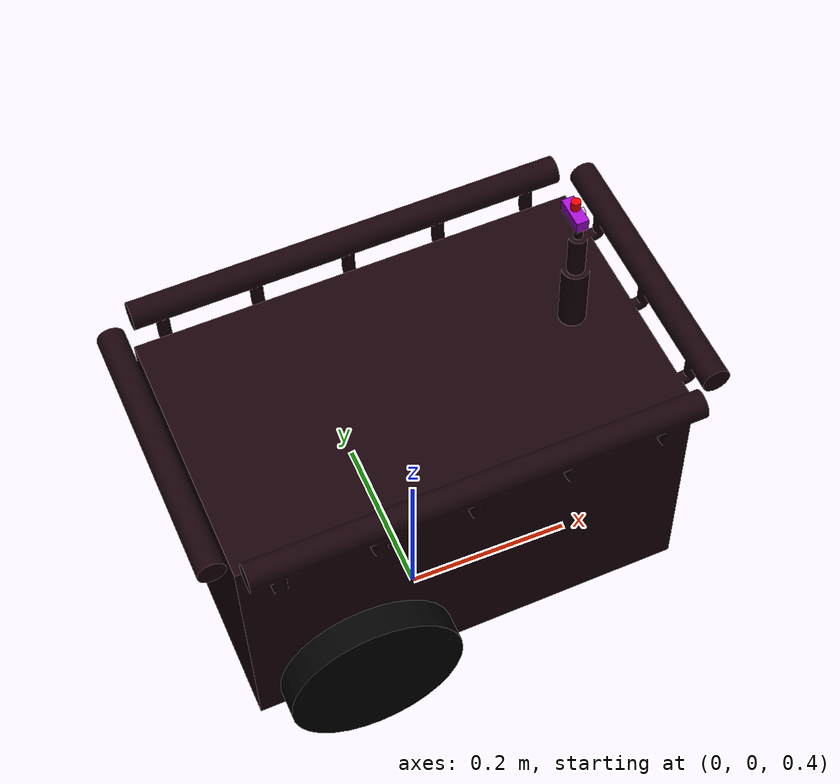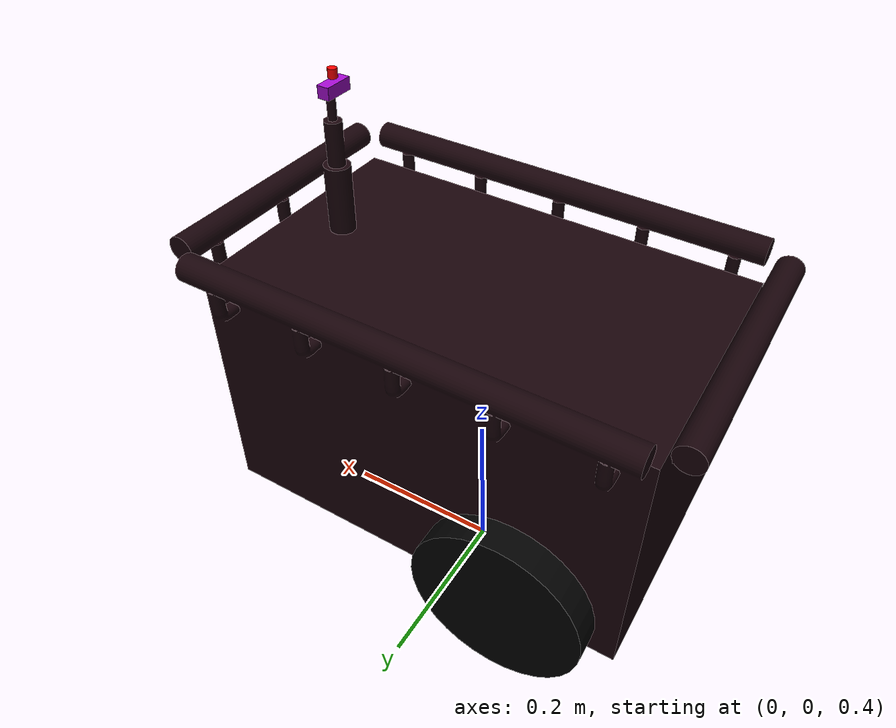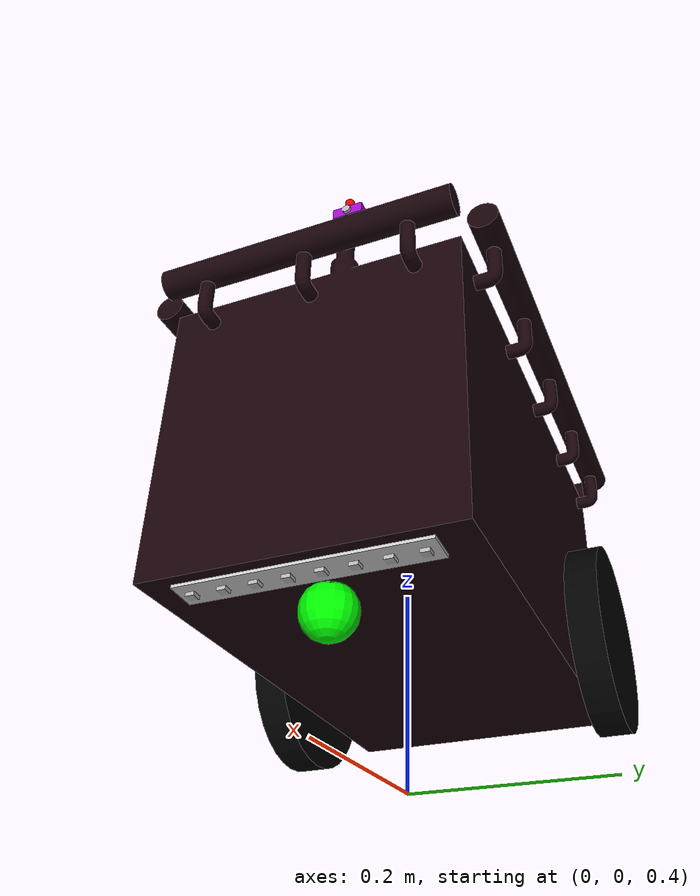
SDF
<?xml version="1.0" ?>
<sdf version='1.9'>
  <model name='Axe-LL' canonical_link="chassi_link">

    <!-- Frames auxiliares -->
    <frame name="caster_frame" attached_to="chassi_link">
        <pose>0.18 0 -0.17 0 0 0</pose>
    </frame>
    <frame name="lidar_frame" attached_to='chassi_link'>
    <pose>0.8 0 0.5 0 0 0</pose>
</frame>

    <!-- Link do chassi -->
    <link name='chassi_link'>
      <visual name='visual'>
        <geometry>
          <mesh>
            <uri>file:///home/kifelix/Blender Objetos/prototipo 1 (Axe-LL_ Adaptable Xenon Explorer_ Logistics Line-follower)/Chassi_sem_roda.dae</uri>
          </mesh>
        </geometry>
      </visual>
      <collision name='collision'>
        <geometry>
          <mesh>
            <uri>file:///home/kifelix/Blender Objetos/prototipo 1 (Axe-LL_ Adaptable Xenon Explorer_ Logistics Line-follower)/Chassi_sem_roda.dae</uri>
          </mesh>
        </geometry>
      </collision>
      <pose>0 0 0 0 0 0</pose>
      <inertial>
        <pose>0 0 0 0 0 0</pose>
        <mass>10.0</mass>
        <inertia>
          <ixx>0.15</ixx>
          <ixy>0</ixy>
          <ixz>0</ixz>
          <iyy>0.2833</iyy>
          <iyz>0</iyz>
          <izz>0.2833</izz>
        </inertia>
      </inertial>
      <enable_wind>false</enable_wind>
      <sensor name="imu_sensor" type="imu">
	  <pose>0 0 0 0 0 0</pose>
	  <topic>imu</topic>
	  <imu>
	    <angular_velocity>
	      <noise>
		<type>gaussian</type>
		<mean>0.0</mean>
		<stddev>0.01</stddev>
	      </noise>
	    </angular_velocity>
	    <linear_acceleration>
	      <noise>
		<type>gaussian</type>
		<mean>0.0</mean>
		<stddev>0.01</stddev>
	      </noise>
	    </linear_acceleration>
	    <orientation>
	      <noise>
		<type>gaussian</type>
		<mean>0.0</mean>
		<stddev>0.01</stddev>
	      </noise>
	    </orientation>
	  </imu>
	  <plugin filename="ignition_ros2_imu_sensor" name="imu_sensor_plugin">
	    <ros>
	      <namespace>/</namespace>
	      <remapping>~/imu_sensor:=/imu_sensor</remapping>
	    </ros>
	    <update_rate>50.0</update_rate>
	  </plugin>
	</sensor>
    </link>

    <!-- Link roda direita -->
    <link name='rodaD_link'>
      <visual name='visual'>
        <geometry>
          <mesh>
            <uri>file:///home/kifelix/Blender Objetos/prototipo 1 (Axe-LL_ Adaptable Xenon Explorer_ Logistics Line-follower)/roda(geral).dae</uri>
          </mesh>
        </geometry>
      </visual>
      <collision name='collision'>
        <geometry>
          <mesh>
            <uri>file:///home/kifelix/Blender Objetos/prototipo 1 (Axe-LL_ Adaptable Xenon Explorer_ Logistics Line-follower)/roda(geral).dae</uri>
          </mesh>
        </geometry>
      </collision>
      <pose>-0.1264 -0.1751 -0.1 0 0 0</pose>
      <inertial>
        <pose>0 0 0 0 0 0</pose>
        <mass>8</mass>
        <inertia>
	    <ixx>0.0217</ixx>
	    <ixy>0</ixy>
	    <ixz>0</ixz>
	    <iyy>0.04</iyy>
	    <iyz>0</iyz>
	    <izz>0.0217</izz>
        </inertia>
      </inertial>
      <enable_wind>false</enable_wind>
    </link>

    <!-- Link roda Esquerda -->
    <link name='rodaE_link'>
      <visual name='visual'>
        <geometry>
          <mesh>
            <uri>file:///home/kifelix/Blender Objetos/prototipo 1 (Axe-LL_ Adaptable Xenon Explorer_ Logistics Line-follower)/roda(geral).dae</uri>
          </mesh>
        </geometry>
      </visual>
      <collision name='collision'>
        <geometry>
          <mesh>
            <uri>file:///home/kifelix/Blender Objetos/prototipo 1 (Axe-LL_ Adaptable Xenon Explorer_ Logistics Line-follower)/roda(geral).dae</uri>
          </mesh>
        </geometry>
      </collision>
      <pose>-0.1264 0.1751 -0.1 0 0 0</pose>
      <inertial>
        <pose>0 0 0 0 0 0</pose>
        <mass>8</mass>
        <inertia>
	    <ixx>0.0217</ixx>
	    <ixy>0</ixy>
	    <ixz>0</ixz>
	    <iyy>0.04</iyy>
	    <iyz>0</iyz>
	    <izz>0.0217</izz>
        </inertia>
      </inertial>
      <enable_wind>false</enable_wind>
    </link>

    <!-- Roda Boba -->
    <link name="caster">
        <pose relative_to="caster_frame"/>
        <inertial>
          <mass>1</mass>
          <inertia>
            <ixx>0.016</ixx><ixy>0</ixy><ixz>0</ixz>
            <iyy>0.016</iyy><iyz>0</iyz><izz>0.016</izz>
          </inertia>
        </inertial>
        <visual name="visual">
          <geometry><sphere><radius>0.027</radius></sphere></geometry>
          <material><ambient>0 1 0 1</ambient><diffuse>0 1 0 1</diffuse><specular>0 1 0 1</specular></material>
        </visual>
        <collision name="collision">
          <geometry><sphere><radius>0.027</radius></sphere></geometry>
        </collision>
    </link>

	<link name='link_lidar'>
                <pose relative_to="camera_rgb_0_link">0 0 0.015 0 0 0</pose>
                <inertial>
                    <mass>0.1</mass>
                    <inertia>
                        <ixx>0</ixx>
                        <ixy>0</ixy>
                        <ixz>0</ixz>
                        <iyy>0</iyy>
                        <iyz>0</iyz>
                        <izz>0</izz>
                    </inertia>
                </inertial>
                <visual name='visual'>
                    <geometry>
                        <cylinder>
                            <radius>0.005</radius>
                            <length>0.01</length>
                        </cylinder>
                    </geometry>
                    <material>
                        <ambient>1.0 0.0 0.0 1</ambient>
                        <diffuse>1.0 0.0 0.0 1</diffuse>
                        <specular>1.0 0.0 0.0 1</specular>
                    </material>
                </visual>
                <collision name='collision'>
                    <geometry>
                        <cylinder>
                            <radius>0.005</radius>
                            <length>0.01</length>
                        </cylinder>
                    </geometry>
                </collision>
                <sensor name='gpu_lidar' type='gpu_lidar'>"
		    <pose relative_to='link_lidar'>0 0 0 0 0 0</pose>
		    <topic>lidar</topic>
		    <update_rate>10</update_rate>
		    <ray>
			<scan>
			    <horizontal>
				<samples>640</samples>
				<resolution>1</resolution>
				<min_angle>-1.396263</min_angle>
				<max_angle>1.396263</max_angle>
			    </horizontal>
			    <vertical>
				<samples>1</samples>
				<resolution>0.01</resolution>
				<min_angle>0</min_angle>
				<max_angle>0</max_angle>
			    </vertical>
			</scan>
			<range>
			    <min>0.08</min>
			    <max>10.0</max>
			    <resolution>0.01</resolution>
			</range>
		    </ray>
		    <always_on>1</always_on>
		    <visualize>true</visualize>
		</sensor>
            </link>
	<link name="modulo_sensor_0_link">
	  <visual name="visual">
	    <geometry>
	      <mesh>
		<uri>file:///home/kifelix/Blender Objetos/prototipo 1 (Axe-LL_ Adaptable Xenon Explorer_ Logistics Line-follower)/modulo_sensor_0.dae</uri>
	      </mesh>
	    </geometry>
	  </visual>
	  <collision name="collision">
	    <geometry>
	      <mesh>
		<uri>file:///home/kifelix/Blender Objetos/prototipo 1 (Axe-LL_ Adaptable Xenon Explorer_ Logistics Line-follower)/modulo_sensor_0.dae</uri>
	      </mesh>
	    </geometry>
	  </collision>
	  <pose>0.226734 0 -0.155 3.14159 0.064482 3.14159</pose>
	  <inertial>
	    <pose>0 0 0 0 0 0</pose>
	    <mass>0.1</mass>
	    <inertia>
	      <ixx>1</ixx>
	      <ixy>0</ixy>
	      <ixz>0</ixz>
	      <iyy>1</iyy>
	      <iyz>0</iyz>
	      <izz>1</izz>
	    </inertia>
	  </inertial>
	  <enable_wind>false</enable_wind>
	  <!-- Sensores infravermelhos -->
	  <sensor name="sensor_ray" type="ray">
          <ray>
            <scan>
              <horizontal>
                <samples>300</samples>
                <resolution>1.0</resolution>
                <min_angle>-0.5236</min_angle>
                <max_angle>0.5236</max_angle>
              </horizontal>
              <vertical>
                <samples>100</samples>
                <resolution>1.0</resolution>
                <min_angle>-0.5236</min_angle>
                <max_angle>0.5236</max_angle>
              </vertical>
            </scan>
            <range>
              <min>0.05</min>
              <max>50.0</max>
            </range>
          </ray>
          <always_on>true</always_on>
          <update_rate>1.0</update_rate>
          <plugin name="pc2" filename="libgazebo_ros_ray_sensor.so">
            <ros>
              <namespace>/ray</namespace>
              <remapping>~/out:=pointcloud2</remapping>
            </ros>
            <output_type>sensor_msgs/PointCloud2</output_type>
          </plugin>
          <plugin name="pc" filename="libgazebo_ros_ray_sensor.so">
            <ros>
              <namespace>/ray</namespace>
              <remapping>~/out:=pointcloud</remapping>
            </ros>
            <output_type>sensor_msgs/PointCloud</output_type>
          </plugin>
          <plugin name="laserscan" filename="libgazebo_ros_ray_sensor.so">
            <ros>
              <namespace>/ray</namespace>
              <remapping>~/out:=laserscan</remapping>
            </ros>
            <output_type>sensor_msgs/LaserScan</output_type>
          </plugin>
          <plugin name="range" filename="libgazebo_ros_ray_sensor.so">
            <ros>
              <namespace>/ray</namespace>
              <remapping>~/out:=range</remapping>
            </ros>
            <output_type>sensor_msgs/Range</output_type>
          </plugin>
        </sensor>

        <!-- gpu_ray sensor producing PointCloud / LaserScan -->
        <sensor name="sensor_gpu_ray" type="gpu_ray">
          <ray>
            <scan>
              <horizontal>
                <samples>300</samples>
                <resolution>1.0</resolution>
                <min_angle>-0.5236</min_angle>
                <max_angle>0.5236</max_angle>
              </horizontal>
            </scan>
            <range>
              <min>0.05</min>
              <max>50.0</max>
            </range>
          </ray>
          <always_on>true</always_on>
          <update_rate>1.0</update_rate>
          <plugin name="pc2_gpu" filename="libgazebo_ros_ray_sensor.so">
            <ros>
              <namespace>/gpu_ray</namespace>
              <remapping>~/out:=pointcloud2</remapping>
            </ros>
            <output_type>sensor_msgs/PointCloud2</output_type>
          </plugin>
          <plugin name="pc_gpu" filename="libgazebo_ros_ray_sensor.so">
            <ros>
              <namespace>/gpu_ray</namespace>
              <remapping>~/out:=pointcloud</remapping>
            </ros>
            <output_type>sensor_msgs/PointCloud</output_type>
          </plugin>
          <plugin name="laserscan_gpu" filename="libgazebo_ros_ray_sensor.so">
            <ros>
              <namespace>/gpu_ray</namespace>
              <remapping>~/out:=laserscan</remapping>
            </ros>
            <output_type>sensor_msgs/LaserScan</output_type>
          </plugin>
          <plugin name="range_gpu" filename="libgazebo_ros_ray_sensor.so">
            <ros>
              <namespace>/gpu_ray</namespace>
              <remapping>~/out:=range</remapping>
            </ros>
            <output_type>sensor_msgs/Range</output_type>
          </plugin>
        </sensor>
	</link>

    <!-- Link câmera RGB -->
    <link name='camera_rgb_0_link'>
      <visual name='visual'>
        <geometry>
          <mesh>
            <uri>file:///home/kifelix/Blender Objetos/prototipo 1 (Axe-LL_ Adaptable Xenon Explorer_ Logistics Line-follower)/camera_rgb.dae</uri>
          </mesh>
        </geometry>
      </visual>
      <collision name='collision'>
        <geometry>
          <mesh>
            <uri>file:///home/kifelix/Blender Objetos/prototipo 1 (Axe-LL_ Adaptable Xenon Explorer_ Logistics Line-follower)/camera_rgb.dae</uri>
          </mesh>
        </geometry>
      </collision>
      <pose>0.1791 0 0.315 0 0 0</pose>
      <inertial>
        <pose>0 0 0 0 0 0</pose>
        <mass>0.1</mass>
        <inertia>
          <ixx>1</ixx>
          <ixy>0</ixy>
          <ixz>0</ixz>
          <iyy>1</iyy>
          <iyz>0</iyz>
          <izz>1</izz>
        </inertia>
      </inertial>
      <enable_wind>false</enable_wind>

      <sensor name="camera_sensor" type="camera">

    	<pose>0 0 0 0 0 0</pose>
    	<topic>camera</topic>
    	<camera>
      	<horizontal_fov>1.047</horizontal_fov>
      	<image>
        	<width>640</width>
        	<height>480</height>
        	<format>R8G8B8</format>
      	</image>
      	<clip>
        	<near>0.1</near>
        	<far>100</far>
      	</clip>
    	</camera>
    	<update_rate>60</update_rate>

  	</sensor>
    </link>

    <!-- Joints revolute para rodas girarem -->
    <joint name="junta_roda_esquerda" type="revolute">
        <pose relative_to="rodaE_link"/>
        <parent>chassi_link</parent>
        <child>rodaE_link</child>
        <axis>
          <xyz expressed_in="__model__">0 1 0</xyz>
          <limit><lower>-1.79769e+308</lower><upper>1.79769e+308</upper></limit>
        </axis>
        <dynamics>
	  <damping>0.1</damping>
	  <friction>0.01</friction> <!-- atrito no eixo -->
	</dynamics>
    </joint>

    <joint name="junta_roda_direita" type="revolute">
        <pose relative_to="rodaD_link"/>
        <parent>chassi_link</parent>
        <child>rodaD_link</child>
        <axis>
          <xyz expressed_in="__model__">0 1 0</xyz>
          <limit><lower>-1.79769e+308</lower><upper>1.79769e+308</upper></limit>
        </axis>
        <dynamics>
	   <damping>0.1</damping>
	   <friction>0.01</friction> <!-- atrito no eixo -->
	</dynamics>

    </joint>

    <joint name="caster_wheel" type="ball">
        <parent>chassi_link</parent>
        <child>caster</child>
    </joint>

    <!-- Joints fixos para prender sensor e câmera ao chassi -->
    <joint name='joint_modulo_sensor_0' type='fixed'>
      <parent>chassi_link</parent>
      <child>modulo_sensor_0_link</child>
      <pose>0 0 0 0 0 0</pose>
    </joint>

    <joint name='joint_camera_rgb_0' type='fixed'>
      <parent>chassi_link</parent>
      <child>camera_rgb_0_link</child>
      <pose>0 0 0 0 0 0</pose>
    </joint>

    <joint name='joint_lidar' type='fixed'>
      <parent>joint_camera_rgb_0</parent>
      <child>link_lidar</child>
      <pose>0 0 0 0 0 0</pose>
    </joint>

    <pose>-0 0 0.6746 0.009576 -0.027528 0.012258</pose>
    <static>false</static>
    <self_collide>false</self_collide>

    <!-- Plugins do modelo -->
      <plugin filename="libignition-gazebo-diff-drive-system.so" name="ignition::gazebo::systems::DiffDrive">
        <left_joint>junta_roda_esquerda</left_joint>
        <right_joint>junta_roda_direita</right_joint>
        <wheel_separation>0.32</wheel_separation>
        <wheel_radius>0.2</wheel_radius>
        <odom_publish_frequency>60</odom_publish_frequency>
        <topic>/cmd_vel</topic>
        <odom_topic>/odom</odom_topic>
      </plugin>

      <plugin name="camera_controller" filename="libignition-gazebo-camera-system.so"/>

      <plugin filename="libignition-gazebo-triggered-publisher-system.so" name="ignition::gazebo::systems::TriggeredPublisher">
        <input type="ignition.msgs.Boolean" topic="/wall/touched">
          <match>data: true</match>
        </input>
        <output type="ignition.msgs.Twist" topic="/cmd_vel">
          linear: {x: 0.0}, angular: {z: 0.0}
        </output>
      </plugin>
      <plugin filename="libignition-gazebo-imu-system.so"
          name="ignition::gazebo::systems::Imu">
      </plugin>
      <plugin filename="ignition-gazebo-joint-state-publisher-system" name="ignition::gazebo::systems::JointStatePublisher"/>
  </model>
</sdf>
